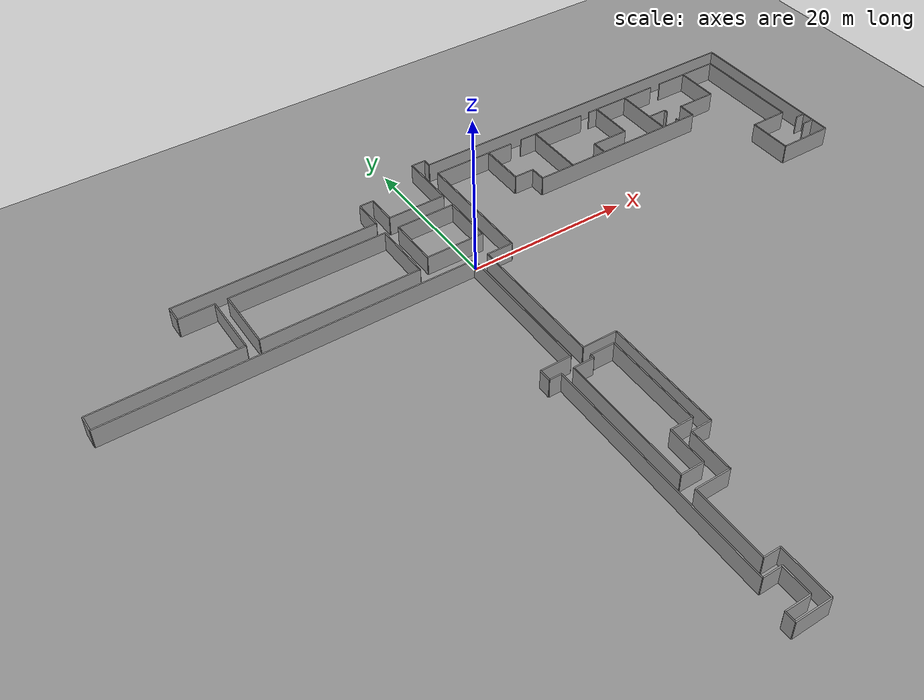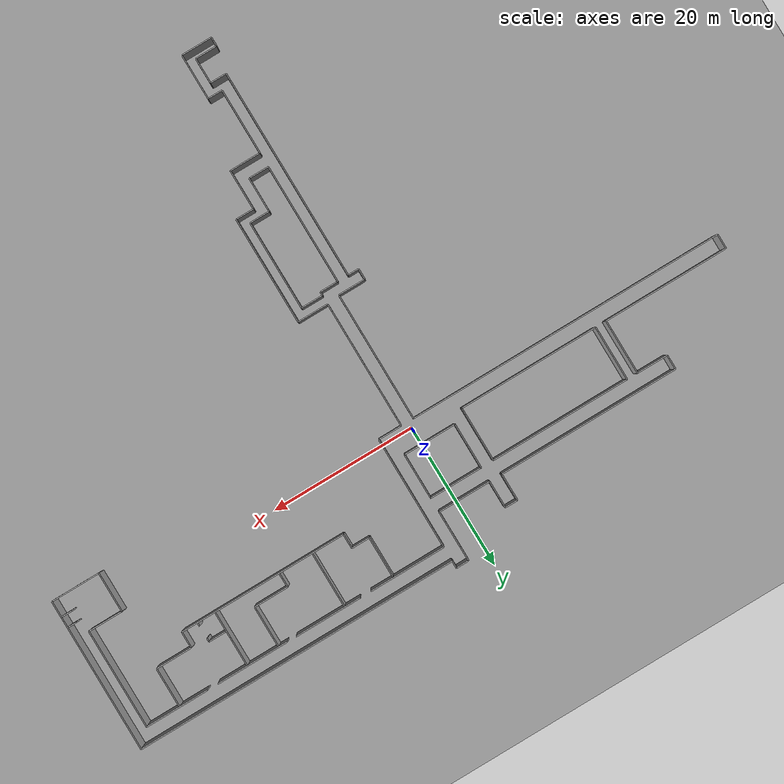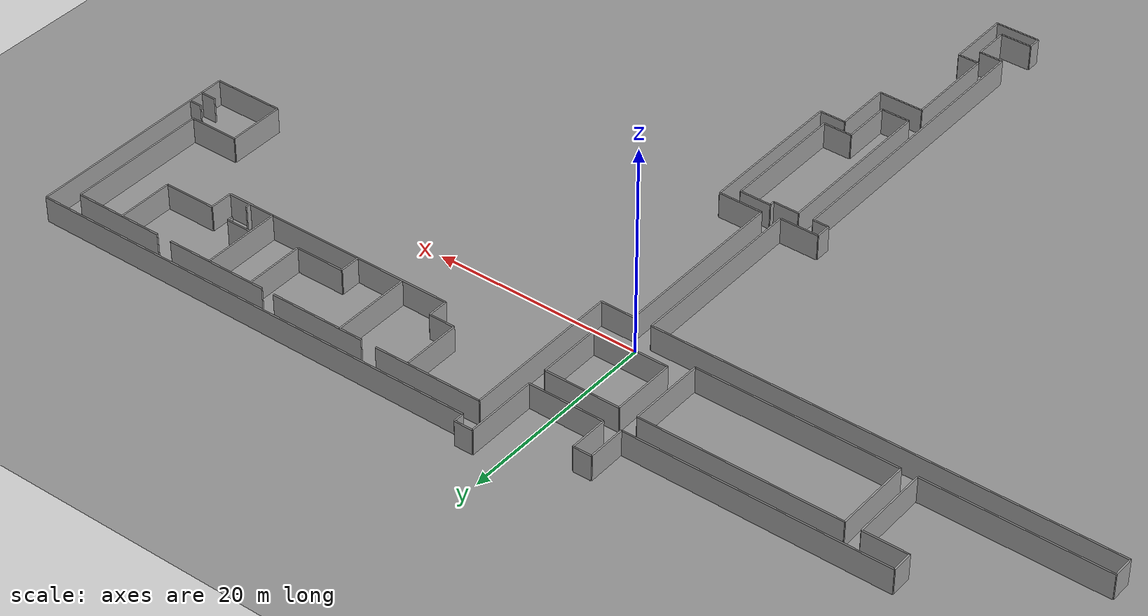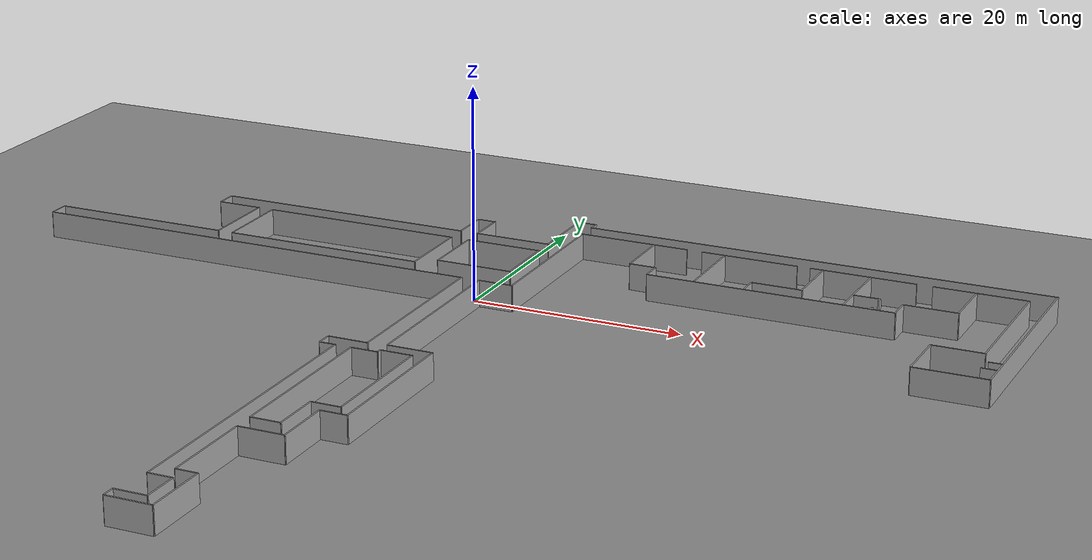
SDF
<sdf version="1.6">
 <world name="default">
  <model name="ground_plane_0">
   <static>1</static>
   <link name="link">
    <collision name="collision">
     <geometry><plane><normal>0 0 1</normal><size>100 100</size></plane></geometry>
     <surface><friction><ode><mu>100</mu><mu2>50</mu2></ode></friction></surface>
    </collision>
    <visual name="visual">
     <cast_shadows>0</cast_shadows>
     <geometry><plane><normal>0 0 1</normal><size>100 100</size></plane></geometry>
     <material>
      <script><uri>file://media/materials/scripts/gazebo.material</uri><name>Gazebo/Grey</name></script>
     </material>
    </visual>
    <velocity_decay><linear>0</linear><angular>0</angular></velocity_decay>
   </link>
   <pose>0.497681 0 0 0 -0 0</pose>
  </model>
  <model name="Wean4Complete">
   <pose>-5 0 0 0 -0 0</pose>
   <static>1</static>
   <link name="Wall_0">
    <collision name="Wall_0_Collision">
     <geometry><box><size>25.0 0.15 2.5</size></box></geometry>
     <pose>0 0 1.25 0 -0 0</pose>
    </collision>
    <visual name="Wall_0_Visual">
     <pose>0 0 1.25 0 -0 0</pose>
     <geometry><box><size>25.0 0.15 2.5</size></box></geometry>
     <material>
      <script><uri>file://media/materials/scripts/gazebo.material</uri><name>Gazebo/Grey</name></script>
      <ambient>1 1 1 1</ambient>
     </material>
    </visual>
    <pose>-14.05 10.5 0 0 0 0.0</pose>
   </link>
   <link name="Wall_1">
    <collision name="Wall_1_Collision">
     <geometry><box><size>3.75 0.15 2.5</size></box></geometry>
     <pose>0 0 1.25 0 -0 0</pose>
    </collision>
    <visual name="Wall_1_Visual">
     <pose>0 0 1.25 0 -0 0</pose>
     <geometry><box><size>3.75 0.15 2.5</size></box></geometry>
     <material>
      <script><uri>file://media/materials/scripts/gazebo.material</uri><name>Gazebo/Grey</name></script>
      <ambient>1 1 1 1</ambient>
     </material>
    </visual>
    <pose>-1.55 12.375 0 0 0 1.57079632679</pose>
   </link>
   <link name="Wall_2">
    <collision name="Wall_2_Collision">
     <geometry><box><size>1.75 0.15 2.5</size></box></geometry>
     <pose>0 0 1.25 0 -0 0</pose>
    </collision>
    <visual name="Wall_2_Visual">
     <pose>0 0 1.25 0 -0 0</pose>
     <geometry><box><size>1.75 0.15 2.5</size></box></geometry>
     <material>
      <script><uri>file://media/materials/scripts/gazebo.material</uri><name>Gazebo/Grey</name></script>
      <ambient>1 1 1 1</ambient>
     </material>
    </visual>
    <pose>-0.675 14.25 0 0 0 0.0</pose>
   </link>
   <link name="Wall_3">
    <collision name="Wall_3_Collision">
     <geometry><box><size>3.75 0.15 2.5</size></box></geometry>
     <pose>0 0 1.25 0 -0 0</pose>
    </collision>
    <visual name="Wall_3_Visual">
     <pose>0 0 1.25 0 -0 0</pose>
     <geometry><box><size>3.75 0.15 2.5</size></box></geometry>
     <material>
      <script><uri>file://media/materials/scripts/gazebo.material</uri><name>Gazebo/Grey</name></script>
      <ambient>1 1 1 1</ambient>
     </material>
    </visual>
    <pose>0.2 12.375 0 0 0 1.57079632679</pose>
   </link>
   <link name="Wall_4">
    <collision name="Wall_4_Collision">
     <geometry><box><size>7.25 0.15 2.5</size></box></geometry>
     <pose>0 0 1.25 0 -0 0</pose>
    </collision>
    <visual name="Wall_4_Visual">
     <pose>0 0 1.25 0 -0 0</pose>
     <geometry><box><size>7.25 0.15 2.5</size></box></geometry>
     <material>
      <script><uri>file://media/materials/scripts/gazebo.material</uri><name>Gazebo/Grey</name></script>
      <ambient>1 1 1 1</ambient>
     </material>
    </visual>
    <pose>3.825 10.5 0 0 0 0.0</pose>
   </link>
   <link name="Wall_5">
    <collision name="Wall_5_Collision">
     <geometry><box><size>7.0 0.15 2.5</size></box></geometry>
     <pose>0 0 1.25 0 -0 0</pose>
    </collision>
    <visual name="Wall_5_Visual">
     <pose>0 0 1.25 0 -0 0</pose>
     <geometry><box><size>7.0 0.15 2.5</size></box></geometry>
     <material>
      <script><uri>file://media/materials/scripts/gazebo.material</uri><name>Gazebo/Grey</name></script>
      <ambient>1 1 1 1</ambient>
     </material>
    </visual>
    <pose>7.45 14.0 0 0 0 1.57079632679</pose>
   </link>
   <link name="Wall_6">
    <collision name="Wall_6_Collision">
     <geometry><box><size>1.75 0.15 2.5</size></box></geometry>
     <pose>0 0 1.25 0 -0 0</pose>
    </collision>
    <visual name="Wall_6_Visual">
     <pose>0 0 1.25 0 -0 0</pose>
     <geometry><box><size>1.75 0.15 2.5</size></box></geometry>
     <material>
      <script><uri>file://media/materials/scripts/gazebo.material</uri><name>Gazebo/Grey</name></script>
      <ambient>1 1 1 1</ambient>
     </material>
    </visual>
    <pose>8.325 17.5 0 0 0 0.0</pose>
   </link>
   <link name="Wall_7">
    <collision name="Wall_7_Collision">
     <geometry><box><size>1.0 0.15 2.5</size></box></geometry>
     <pose>0 0 1.25 0 -0 0</pose>
    </collision>
    <visual name="Wall_7_Visual">
     <pose>0 0 1.25 0 -0 0</pose>
     <geometry><box><size>1.0 0.15 2.5</size></box></geometry>
     <material>
      <script><uri>file://media/materials/scripts/gazebo.material</uri><name>Gazebo/Grey</name></script>
      <ambient>1 1 1 1</ambient>
     </material>
    </visual>
    <pose>9.2 17.0 0 0 0 1.57079632679</pose>
   </link>
   <link name="Wall_8">
    <collision name="Wall_8_Collision">
     <geometry><box><size>44.75 0.15 2.5</size></box></geometry>
     <pose>0 0 1.25 0 -0 0</pose>
    </collision>
    <visual name="Wall_8_Visual">
     <pose>0 0 1.25 0 -0 0</pose>
     <geometry><box><size>44.75 0.15 2.5</size></box></geometry>
     <material>
      <script><uri>file://media/materials/scripts/gazebo.material</uri><name>Gazebo/Grey</name></script>
      <ambient>1 1 1 1</ambient>
     </material>
    </visual>
    <pose>31.575 16.5 0 0 0 0.0</pose>
   </link>
   <link name="Wall_9">
    <collision name="Wall_9_Collision">
     <geometry><box><size>21.25 0.15 2.5</size></box></geometry>
     <pose>0 0 1.25 0 -0 0</pose>
    </collision>
    <visual name="Wall_9_Visual">
     <pose>0 0 1.25 0 -0 0</pose>
     <geometry><box><size>21.25 0.15 2.5</size></box></geometry>
     <material>
      <script><uri>file://media/materials/scripts/gazebo.material</uri><name>Gazebo/Grey</name></script>
      <ambient>1 1 1 1</ambient>
     </material>
    </visual>
    <pose>53.95 5.875 0 0 0 1.57079632679</pose>
   </link>
   <link name="Wall_10">
    <collision name="Wall_10_Collision">
     <geometry><box><size>6.75 0.15 2.5</size></box></geometry>
     <pose>0 0 1.25 0 -0 0</pose>
    </collision>
    <visual name="Wall_10_Visual">
     <pose>0 0 1.25 0 -0 0</pose>
     <geometry><box><size>6.75 0.15 2.5</size></box></geometry>
     <material>
      <script><uri>file://media/materials/scripts/gazebo.material</uri><name>Gazebo/Grey</name></script>
      <ambient>1 1 1 1</ambient>
     </material>
    </visual>
    <pose>50.575 -4.75 0 0 0 0.0</pose>
   </link>
   <link name="Wall_11">
    <collision name="Wall_11_Collision">
     <geometry><box><size>5.5 0.15 2.5</size></box></geometry>
     <pose>0 0 1.25 0 -0 0</pose>
    </collision>
    <visual name="Wall_11_Visual">
     <pose>0 0 1.25 0 -0 0</pose>
     <geometry><box><size>5.5 0.15 2.5</size></box></geometry>
     <material>
      <script><uri>file://media/materials/scripts/gazebo.material</uri><name>Gazebo/Grey</name></script>
      <ambient>1 1 1 1</ambient>
     </material>
    </visual>
    <pose>47.2 -2.0 0 0 0 1.57079632679</pose>
   </link>
   <link name="Wall_13">
    <collision name="Wall_13_Collision">
     <geometry><box><size>4.75 0.15 2.5</size></box></geometry>
     <pose>0 0 1.25 0 -0 0</pose>
    </collision>
    <visual name="Wall_13_Visual">
     <pose>0 0 1.25 0 -0 0</pose>
     <geometry><box><size>4.75 0.15 2.5</size></box></geometry>
     <material>
      <script><uri>file://media/materials/scripts/gazebo.material</uri><name>Gazebo/Grey</name></script>
      <ambient>1 1 1 1</ambient>
     </material>
    </visual>
    <pose>49.575 0.75 0 0 0 0.0</pose>
   </link>
   <link name="Wall_14">
    <collision name="Wall_14_Collision">
     <geometry><box><size>13.75 0.15 2.5</size></box></geometry>
     <pose>0 0 1.25 0 -0 0</pose>
    </collision>
    <visual name="Wall_14_Visual">
     <pose>0 0 1.25 0 -0 0</pose>
     <geometry><box><size>13.75 0.15 2.5</size></box></geometry>
     <material>
      <script><uri>file://media/materials/scripts/gazebo.material</uri><name>Gazebo/Grey</name></script>
      <ambient>1 1 1 1</ambient>
     </material>
    </visual>
    <pose>51.95 7.625 0 0 0 1.57079632679</pose>
   </link>
   <link name="Wall_15">
    <collision name="Wall_15_Collision">
     <geometry><box><size>8.75 0.15 2.5</size></box></geometry>
     <pose>0 0 1.25 0 -0 0</pose>
    </collision>
    <visual name="Wall_15_Visual">
     <pose>0 0 1.25 0 -0 0</pose>
     <geometry><box><size>8.75 0.15 2.5</size></box></geometry>
     <material>
      <script><uri>file://media/materials/scripts/gazebo.material</uri><name>Gazebo/Grey</name></script>
      <ambient>1 1 1 1</ambient>
     </material>
    </visual>
    <pose>47.575 14.5 0 0 0 0.0</pose>
   </link>
   <link name="Wall_16">
    <collision name="Wall_16_Collision">
     <geometry><box><size>1.25 0.15 2.5</size></box></geometry>
     <pose>0 0 1.25 0 -0 0</pose>
    </collision>
    <visual name="Wall_16_Visual">
     <pose>0 0 1.25 0 -0 0</pose>
     <geometry><box><size>1.25 0.15 2.5</size></box></geometry>
     <material>
      <script><uri>file://media/materials/scripts/gazebo.material</uri><name>Gazebo/Grey</name></script>
      <ambient>1 1 1 1</ambient>
     </material>
    </visual>
    <pose>53.325 -1.0 0 0 0 0.0</pose>
   </link>
   <link name="Wall_17">
    <collision name="Wall_17_Collision">
     <geometry><box><size>1.5 0.15 2.5</size></box></geometry>
     <pose>0 0 1.25 0 -0 0</pose>
    </collision>
    <visual name="Wall_17_Visual">
     <pose>0 0 1.25 0 -0 0</pose>
     <geometry><box><size>1.5 0.15 2.5</size></box></geometry>
     <material>
      <script><uri>file://media/materials/scripts/gazebo.material</uri><name>Gazebo/Grey</name></script>
      <ambient>1 1 1 1</ambient>
     </material>
    </visual>
    <pose>53.2 -2.5 0 0 0 0.0</pose>
   </link>
   <link name="Wall_18">
    <collision name="Wall_18_Collision">
     <geometry><box><size>10.0 0.15 2.5</size></box></geometry>
     <pose>0 0 1.25 0 -0 0</pose>
    </collision>
    <visual name="Wall_18_Visual">
     <pose>0 0 1.25 0 -0 0</pose>
     <geometry><box><size>10.0 0.15 2.5</size></box></geometry>
     <material>
      <script><uri>file://media/materials/scripts/gazebo.material</uri><name>Gazebo/Grey</name></script>
      <ambient>1 1 1 1</ambient>
     </material>
    </visual>
    <pose>36.7 14.5 0 0 0 0.0</pose>
   </link>
   <link name="Wall_19">
    <collision name="Wall_19_Collision">
     <geometry><box><size>9.25 0.15 2.5</size></box></geometry>
     <pose>0 0 1.25 0 -0 0</pose>
    </collision>
    <visual name="Wall_19_Visual">
     <pose>0 0 1.25 0 -0 0</pose>
     <geometry><box><size>9.25 0.15 2.5</size></box></geometry>
     <material>
      <script><uri>file://media/materials/scripts/gazebo.material</uri><name>Gazebo/Grey</name></script>
      <ambient>1 1 1 1</ambient>
     </material>
    </visual>
    <pose>25.825 14.5 0 0 0 0.0</pose>
   </link>
   <link name="Wall_20">
    <collision name="Wall_20_Collision">
     <geometry><box><size>10.5 0.15 2.5</size></box></geometry>
     <pose>0 0 1.25 0 -0 0</pose>
    </collision>
    <visual name="Wall_20_Visual">
     <pose>0 0 1.25 0 -0 0</pose>
     <geometry><box><size>10.5 0.15 2.5</size></box></geometry>
     <material>
      <script><uri>file://media/materials/scripts/gazebo.material</uri><name>Gazebo/Grey</name></script>
      <ambient>1 1 1 1</ambient>
     </material>
    </visual>
    <pose>14.45 14.5 0 0 0 0.0</pose>
   </link>
   <link name="Wall_21">
    <collision name="Wall_21_Collision">
     <geometry><box><size>5.75 0.15 2.5</size></box></geometry>
     <pose>0 0 1.25 0 -0 0</pose>
    </collision>
    <visual name="Wall_21_Visual">
     <pose>0 0 1.25 0 -0 0</pose>
     <geometry><box><size>5.75 0.15 2.5</size></box></geometry>
     <material>
      <script><uri>file://media/materials/scripts/gazebo.material</uri><name>Gazebo/Grey</name></script>
      <ambient>1 1 1 1</ambient>
     </material>
    </visual>
    <pose>16.45 11.625 0 0 0 1.57079632679</pose>
   </link>
   <link name="Wall_22">
    <collision name="Wall_22_Collision">
     <geometry><box><size>2.5 0.15 2.5</size></box></geometry>
     <pose>0 0 1.25 0 -0 0</pose>
    </collision>
    <visual name="Wall_22_Visual">
     <pose>0 0 1.25 0 -0 0</pose>
     <geometry><box><size>2.5 0.15 2.5</size></box></geometry>
     <material>
      <script><uri>file://media/materials/scripts/gazebo.material</uri><name>Gazebo/Grey</name></script>
      <ambient>1 1 1 1</ambient>
     </material>
    </visual>
    <pose>17.7 8.75 0 0 0 0.0</pose>
   </link>
   <link name="Wall_23">
    <collision name="Wall_23_Collision">
     <geometry><box><size>2.0 0.15 2.5</size></box></geometry>
     <pose>0 0 1.25 0 -0 0</pose>
    </collision>
    <visual name="Wall_23_Visual">
     <pose>0 0 1.25 0 -0 0</pose>
     <geometry><box><size>2.0 0.15 2.5</size></box></geometry>
     <material>
      <script><uri>file://media/materials/scripts/gazebo.material</uri><name>Gazebo/Grey</name></script>
      <ambient>1 1 1 1</ambient>
     </material>
    </visual>
    <pose>18.95 7.75 0 0 0 1.57079632679</pose>
   </link>
   <link name="Wall_24">
    <collision name="Wall_24_Collision">
     <geometry><box><size>23.25 0.15 2.5</size></box></geometry>
     <pose>0 0 1.25 0 -0 0</pose>
    </collision>
    <visual name="Wall_24_Visual">
     <pose>0 0 1.25 0 -0 0</pose>
     <geometry><box><size>23.25 0.15 2.5</size></box></geometry>
     <material>
      <script><uri>file://media/materials/scripts/gazebo.material</uri><name>Gazebo/Grey</name></script>
      <ambient>1 1 1 1</ambient>
     </material>
    </visual>
    <pose>30.575 6.75 0 0 0 0.0</pose>
   </link>
   <link name="Wall_25">
    <collision name="Wall_25_Collision">
     <geometry><box><size>2.25 0.15 2.5</size></box></geometry>
     <pose>0 0 1.25 0 -0 0</pose>
    </collision>
    <visual name="Wall_25_Visual">
     <pose>0 0 1.25 0 -0 0</pose>
     <geometry><box><size>2.25 0.15 2.5</size></box></geometry>
     <material>
      <script><uri>file://media/materials/scripts/gazebo.material</uri><name>Gazebo/Grey</name></script>
      <ambient>1 1 1 1</ambient>
     </material>
    </visual>
    <pose>42.2 7.875 0 0 0 1.57079632679</pose>
   </link>
   <link name="Wall_26">
    <collision name="Wall_26_Collision">
     <geometry><box><size>5.0 0.15 2.5</size></box></geometry>
     <pose>0 0 1.25 0 -0 0</pose>
    </collision>
    <visual name="Wall_26_Visual">
     <pose>0 0 1.25 0 -0 0</pose>
     <geometry><box><size>5.0 0.15 2.5</size></box></geometry>
     <material>
      <script><uri>file://media/materials/scripts/gazebo.material</uri><name>Gazebo/Grey</name></script>
      <ambient>1 1 1 1</ambient>
     </material>
    </visual>
    <pose>44.7 9.0 0 0 0 0.0</pose>
   </link>
   <link name="Wall_27">
    <collision name="Wall_27_Collision">
     <geometry><box><size>5.5 0.15 2.5</size></box></geometry>
     <pose>0 0 1.25 0 -0 0</pose>
    </collision>
    <visual name="Wall_27_Visual">
     <pose>0 0 1.25 0 -0 0</pose>
     <geometry><box><size>5.5 0.15 2.5</size></box></geometry>
     <material>
      <script><uri>file://media/materials/scripts/gazebo.material</uri><name>Gazebo/Grey</name></script>
      <ambient>1 1 1 1</ambient>
     </material>
    </visual>
    <pose>47.2 11.75 0 0 0 1.57079632679</pose>
   </link>
   <link name="Wall_28">
    <collision name="Wall_28_Collision">
     <geometry><box><size>7.75 0.15 2.5</size></box></geometry>
     <pose>0 0 1.25 0 -0 0</pose>
    </collision>
    <visual name="Wall_28_Visual">
     <pose>0 0 1.25 0 -0 0</pose>
     <geometry><box><size>7.75 0.15 2.5</size></box></geometry>
     <material>
      <script><uri>file://media/materials/scripts/gazebo.material</uri><name>Gazebo/Grey</name></script>
      <ambient>1 1 1 1</ambient>
     </material>
    </visual>
    <pose>37.45 10.625 0 0 0 1.57079632679</pose>
   </link>
   <link name="Wall_29">
    <collision name="Wall_29_Collision">
     <geometry><box><size>2.5 0.15 2.5</size></box></geometry>
     <pose>0 0 1.25 0 -0 0</pose>
    </collision>
    <visual name="Wall_29_Visual">
     <pose>0 0 1.25 0 -0 0</pose>
     <geometry><box><size>2.5 0.15 2.5</size></box></geometry>
     <material>
      <script><uri>file://media/materials/scripts/gazebo.material</uri><name>Gazebo/Grey</name></script>
      <ambient>1 1 1 1</ambient>
     </material>
    </visual>
    <pose>38.7 9.5 0 0 0 0.0</pose>
   </link>
   <link name="Wall_30">
    <collision name="Wall_30_Collision">
     <geometry><box><size>0.5 0.15 2.5</size></box></geometry>
     <pose>0 0 1.25 0 -0 0</pose>
    </collision>
    <visual name="Wall_30_Visual">
     <pose>0 0 1.25 0 -0 0</pose>
     <geometry><box><size>0.5 0.15 2.5</size></box></geometry>
     <material>
      <script><uri>file://media/materials/scripts/gazebo.material</uri><name>Gazebo/Grey</name></script>
      <ambient>1 1 1 1</ambient>
     </material>
    </visual>
    <pose>39.95 9.25 0 0 0 1.57079632679</pose>
   </link>
   <link name="Wall_31">
    <collision name="Wall_31_Collision">
     <geometry><box><size>0.5 0.15 2.5</size></box></geometry>
     <pose>0 0 1.25 0 -0 0</pose>
    </collision>
    <visual name="Wall_31_Visual">
     <pose>0 0 1.25 0 -0 0</pose>
     <geometry><box><size>0.5 0.15 2.5</size></box></geometry>
     <material>
      <script><uri>file://media/materials/scripts/gazebo.material</uri><name>Gazebo/Grey</name></script>
      <ambient>1 1 1 1</ambient>
     </material>
    </visual>
    <pose>39.95 7.0 0 0 0 1.57079632679</pose>
   </link>
   <link name="Wall_32">
    <collision name="Wall_32_Collision">
     <geometry><box><size>5.75 0.15 2.5</size></box></geometry>
     <pose>0 0 1.25 0 -0 0</pose>
    </collision>
    <visual name="Wall_32_Visual">
     <pose>0 0 1.25 0 -0 0</pose>
     <geometry><box><size>5.75 0.15 2.5</size></box></geometry>
     <material>
      <script><uri>file://media/materials/scripts/gazebo.material</uri><name>Gazebo/Grey</name></script>
      <ambient>1 1 1 1</ambient>
     </material>
    </visual>
    <pose>32.95 11.625 0 0 0 1.57079632679</pose>
   </link>
   <link name="Wall_33">
    <collision name="Wall_33_Collision">
     <geometry><box><size>4.75 0.15 2.5</size></box></geometry>
     <pose>0 0 1.25 0 -0 0</pose>
    </collision>
    <visual name="Wall_33_Visual">
     <pose>0 0 1.25 0 -0 0</pose>
     <geometry><box><size>4.75 0.15 2.5</size></box></geometry>
     <material>
      <script><uri>file://media/materials/scripts/gazebo.material</uri><name>Gazebo/Grey</name></script>
      <ambient>1 1 1 1</ambient>
     </material>
    </visual>
    <pose>30.575 8.75 0 0 0 0.0</pose>
   </link>
   <link name="Wall_34">
    <collision name="Wall_34_Collision">
     <geometry><box><size>2.0 0.15 2.5</size></box></geometry>
     <pose>0 0 1.25 0 -0 0</pose>
    </collision>
    <visual name="Wall_34_Visual">
     <pose>0 0 1.25 0 -0 0</pose>
     <geometry><box><size>2.0 0.15 2.5</size></box></geometry>
     <material>
      <script><uri>file://media/materials/scripts/gazebo.material</uri><name>Gazebo/Grey</name></script>
      <ambient>1 1 1 1</ambient>
     </material>
    </visual>
    <pose>28.2 7.75 0 0 0 1.57079632679</pose>
   </link>
   <link name="Wall_35">
    <collision name="Wall_35_Collision">
     <geometry><box><size>7.75 0.15 2.5</size></box></geometry>
     <pose>0 0 1.25 0 -0 0</pose>
    </collision>
    <visual name="Wall_35_Visual">
     <pose>0 0 1.25 0 -0 0</pose>
     <geometry><box><size>7.75 0.15 2.5</size></box></geometry>
     <material>
      <script><uri>file://media/materials/scripts/gazebo.material</uri><name>Gazebo/Grey</name></script>
      <ambient>1 1 1 1</ambient>
     </material>
    </visual>
    <pose>23.45 10.625 0 0 0 1.57079632679</pose>
   </link>
   <link name="Wall_36">
    <collision name="Wall_36_Collision">
     <geometry><box><size>15.5 0.15 2.5</size></box></geometry>
     <pose>0 0 1.25 0 -0 0</pose>
    </collision>
    <visual name="Wall_36_Visual">
     <pose>0 0 1.25 0 -0 0</pose>
     <geometry><box><size>15.5 0.15 2.5</size></box></geometry>
     <material>
      <script><uri>file://media/materials/scripts/gazebo.material</uri><name>Gazebo/Grey</name></script>
      <ambient>1 1 1 1</ambient>
     </material>
    </visual>
    <pose>9.2 6.75 0 0 0 1.57079632679</pose>
   </link>
   <link name="Wall_37">
    <collision name="Wall_37_Collision">
     <geometry><box><size>3.25 0.15 2.5</size></box></geometry>
     <pose>0 0 1.25 0 -0 0</pose>
    </collision>
    <visual name="Wall_37_Visual">
     <pose>0 0 1.25 0 -0 0</pose>
     <geometry><box><size>3.25 0.15 2.5</size></box></geometry>
     <material>
      <script><uri>file://media/materials/scripts/gazebo.material</uri><name>Gazebo/Grey</name></script>
      <ambient>1 1 1 1</ambient>
     </material>
    </visual>
    <pose>7.575 -1.0 0 0 0 0.0</pose>
   </link>
   <link name="Wall_38">
    <collision name="Wall_38_Collision">
     <geometry><box><size>17.5 0.15 2.5</size></box></geometry>
     <pose>0 0 1.25 0 -0 0</pose>
    </collision>
    <visual name="Wall_38_Visual">
     <pose>0 0 1.25 0 -0 0</pose>
     <geometry><box><size>17.5 0.15 2.5</size></box></geometry>
     <material>
      <script><uri>file://media/materials/scripts/gazebo.material</uri><name>Gazebo/Grey</name></script>
      <ambient>1 1 1 1</ambient>
     </material>
    </visual>
    <pose>5.95 -9.75 0 0 0 1.57079632679</pose>
   </link>
   <link name="Wall_39">
    <collision name="Wall_39_Collision">
     <geometry><box><size>4.25 0.15 2.5</size></box></geometry>
     <pose>0 0 1.25 0 -0 0</pose>
    </collision>
    <visual name="Wall_39_Visual">
     <pose>0 0 1.25 0 -0 0</pose>
     <geometry><box><size>4.25 0.15 2.5</size></box></geometry>
     <material>
      <script><uri>file://media/materials/scripts/gazebo.material</uri><name>Gazebo/Grey</name></script>
      <ambient>1 1 1 1</ambient>
     </material>
    </visual>
    <pose>8.075 -18.5 0 0 0 0.0</pose>
   </link>
   <link name="Wall_40">
    <collision name="Wall_40_Collision">
     <geometry><box><size>14.75 0.15 2.5</size></box></geometry>
     <pose>0 0 1.25 0 -0 0</pose>
    </collision>
    <visual name="Wall_40_Visual">
     <pose>0 0 1.25 0 -0 0</pose>
     <geometry><box><size>14.75 0.15 2.5</size></box></geometry>
     <material>
      <script><uri>file://media/materials/scripts/gazebo.material</uri><name>Gazebo/Grey</name></script>
      <ambient>1 1 1 1</ambient>
     </material>
    </visual>
    <pose>10.2 -25.875 0 0 0 1.57079632679</pose>
   </link>
   <link name="Wall_41">
    <collision name="Wall_41_Collision">
     <geometry><box><size>2.5 0.15 2.5</size></box></geometry>
     <pose>0 0 1.25 0 -0 0</pose>
    </collision>
    <visual name="Wall_41_Visual">
     <pose>0 0 1.25 0 -0 0</pose>
     <geometry><box><size>2.5 0.15 2.5</size></box></geometry>
     <material>
      <script><uri>file://media/materials/scripts/gazebo.material</uri><name>Gazebo/Grey</name></script>
      <ambient>1 1 1 1</ambient>
     </material>
    </visual>
    <pose>8.95 -33.25 0 0 0 0.0</pose>
   </link>
   <link name="Wall_42">
    <collision name="Wall_42_Collision">
     <geometry><box><size>5.5 0.15 2.5</size></box></geometry>
     <pose>0 0 1.25 0 -0 0</pose>
    </collision>
    <visual name="Wall_42_Visual">
     <pose>0 0 1.25 0 -0 0</pose>
     <geometry><box><size>5.5 0.15 2.5</size></box></geometry>
     <material>
      <script><uri>file://media/materials/scripts/gazebo.material</uri><name>Gazebo/Grey</name></script>
      <ambient>1 1 1 1</ambient>
     </material>
    </visual>
    <pose>7.7 -36.0 0 0 0 1.57079632679</pose>
   </link>
   <link name="Wall_43">
    <collision name="Wall_43_Collision">
     <geometry><box><size>4.25 0.15 2.5</size></box></geometry>
     <pose>0 0 1.25 0 -0 0</pose>
    </collision>
    <visual name="Wall_43_Visual">
     <pose>0 0 1.25 0 -0 0</pose>
     <geometry><box><size>4.25 0.15 2.5</size></box></geometry>
     <material>
      <script><uri>file://media/materials/scripts/gazebo.material</uri><name>Gazebo/Grey</name></script>
      <ambient>1 1 1 1</ambient>
     </material>
    </visual>
    <pose>5.575 -38.75 0 0 0 0.0</pose>
   </link>
   <link name="Wall_44">
    <collision name="Wall_44_Collision">
     <geometry><box><size>9.0 0.15 2.5</size></box></geometry>
     <pose>0 0 1.25 0 -0 0</pose>
    </collision>
    <visual name="Wall_44_Visual">
     <pose>0 0 1.25 0 -0 0</pose>
     <geometry><box><size>9.0 0.15 2.5</size></box></geometry>
     <material>
      <script><uri>file://media/materials/scripts/gazebo.material</uri><name>Gazebo/Grey</name></script>
      <ambient>1 1 1 1</ambient>
     </material>
    </visual>
    <pose>3.45 -43.25 0 0 0 1.57079632679</pose>
   </link>
   <link name="Wall_45">
    <collision name="Wall_45_Collision">
     <geometry><box><size>2.0 0.15 2.5</size></box></geometry>
     <pose>0 0 1.25 0 -0 0</pose>
    </collision>
    <visual name="Wall_45_Visual">
     <pose>0 0 1.25 0 -0 0</pose>
     <geometry><box><size>2.0 0.15 2.5</size></box></geometry>
     <material>
      <script><uri>file://media/materials/scripts/gazebo.material</uri><name>Gazebo/Grey</name></script>
      <ambient>1 1 1 1</ambient>
     </material>
    </visual>
    <pose>4.45 -47.75 0 0 0 0.0</pose>
   </link>
   <link name="Wall_46">
    <collision name="Wall_46_Collision">
     <geometry><box><size>6.25 0.15 2.5</size></box></geometry>
     <pose>0 0 1.25 0 -0 0</pose>
    </collision>
    <visual name="Wall_46_Visual">
     <pose>0 0 1.25 0 -0 0</pose>
     <geometry><box><size>6.25 0.15 2.5</size></box></geometry>
     <material>
      <script><uri>file://media/materials/scripts/gazebo.material</uri><name>Gazebo/Grey</name></script>
      <ambient>1 1 1 1</ambient>
     </material>
    </visual>
    <pose>5.45 -50.875 0 0 0 1.57079632679</pose>
   </link>
   <link name="Wall_47">
    <collision name="Wall_47_Collision">
     <geometry><box><size>4.25 0.15 2.5</size></box></geometry>
     <pose>0 0 1.25 0 -0 0</pose>
    </collision>
    <visual name="Wall_47_Visual">
     <pose>0 0 1.25 0 -0 0</pose>
     <geometry><box><size>4.25 0.15 2.5</size></box></geometry>
     <material>
      <script><uri>file://media/materials/scripts/gazebo.material</uri><name>Gazebo/Grey</name></script>
      <ambient>1 1 1 1</ambient>
     </material>
    </visual>
    <pose>3.325 -54.0 0 0 0 0.0</pose>
   </link>
   <link name="Wall_48">
    <collision name="Wall_48_Collision">
     <geometry><box><size>1.25 0.15 2.5</size></box></geometry>
     <pose>0 0 1.25 0 -0 0</pose>
    </collision>
    <visual name="Wall_48_Visual">
     <pose>0 0 1.25 0 -0 0</pose>
     <geometry><box><size>1.25 0.15 2.5</size></box></geometry>
     <material>
      <script><uri>file://media/materials/scripts/gazebo.material</uri><name>Gazebo/Grey</name></script>
      <ambient>1 1 1 1</ambient>
     </material>
    </visual>
    <pose>1.2 -53.375 0 0 0 1.57079632679</pose>
   </link>
   <link name="Wall_49">
    <collision name="Wall_49_Collision">
     <geometry><box><size>3.0 0.15 2.5</size></box></geometry>
     <pose>0 0 1.25 0 -0 0</pose>
    </collision>
    <visual name="Wall_49_Visual">
     <pose>0 0 1.25 0 -0 0</pose>
     <geometry><box><size>3.0 0.15 2.5</size></box></geometry>
     <material>
      <script><uri>file://media/materials/scripts/gazebo.material</uri><name>Gazebo/Grey</name></script>
      <ambient>1 1 1 1</ambient>
     </material>
    </visual>
    <pose>2.7 -52.75 0 0 0 0.0</pose>
   </link>
   <link name="Wall_50">
    <collision name="Wall_50_Collision">
     <geometry><box><size>3.5 0.15 2.5</size></box></geometry>
     <pose>0 0 1.25 0 -0 0</pose>
    </collision>
    <visual name="Wall_50_Visual">
     <pose>0 0 1.25 0 -0 0</pose>
     <geometry><box><size>3.5 0.15 2.5</size></box></geometry>
     <material>
      <script><uri>file://media/materials/scripts/gazebo.material</uri><name>Gazebo/Grey</name></script>
      <ambient>1 1 1 1</ambient>
     </material>
    </visual>
    <pose>4.2 -51.0 0 0 0 1.57079632679</pose>
   </link>
   <link name="Wall_51">
    <collision name="Wall_51_Collision">
     <geometry><box><size>2.25 0.15 2.5</size></box></geometry>
     <pose>0 0 1.25 0 -0 0</pose>
    </collision>
    <visual name="Wall_51_Visual">
     <pose>0 0 1.25 0 -0 0</pose>
     <geometry><box><size>2.25 0.15 2.5</size></box></geometry>
     <material>
      <script><uri>file://media/materials/scripts/gazebo.material</uri><name>Gazebo/Grey</name></script>
      <ambient>1 1 1 1</ambient>
     </material>
    </visual>
    <pose>3.075 -49.25 0 0 0 0.0</pose>
   </link>
   <link name="Wall_52">
    <collision name="Wall_52_Collision">
     <geometry><box><size>29.0 0.15 2.5</size></box></geometry>
     <pose>0 0 1.25 0 -0 0</pose>
    </collision>
    <visual name="Wall_52_Visual">
     <pose>0 0 1.25 0 -0 0</pose>
     <geometry><box><size>29.0 0.15 2.5</size></box></geometry>
     <material>
      <script><uri>file://media/materials/scripts/gazebo.material</uri><name>Gazebo/Grey</name></script>
      <ambient>1 1 1 1</ambient>
     </material>
    </visual>
    <pose>1.95 -34.75 0 0 0 1.57079632679</pose>
   </link>
   <link name="Wall_53">
    <collision name="Wall_53_Collision">
     <geometry><box><size>1.5 0.15 2.5</size></box></geometry>
     <pose>0 0 1.25 0 -0 0</pose>
    </collision>
    <visual name="Wall_53_Visual">
     <pose>0 0 1.25 0 -0 0</pose>
     <geometry><box><size>1.5 0.15 2.5</size></box></geometry>
     <material>
      <script><uri>file://media/materials/scripts/gazebo.material</uri><name>Gazebo/Grey</name></script>
      <ambient>1 1 1 1</ambient>
     </material>
    </visual>
    <pose>1.2 -20.25 0 0 0 0.0</pose>
   </link>
   <link name="Wall_54">
    <collision name="Wall_54_Collision">
     <geometry><box><size>1.5 0.15 2.5</size></box></geometry>
     <pose>0 0 1.25 0 -0 0</pose>
    </collision>
    <visual name="Wall_54_Visual">
     <pose>0 0 1.25 0 -0 0</pose>
     <geometry><box><size>1.5 0.15 2.5</size></box></geometry>
     <material>
      <script><uri>file://media/materials/scripts/gazebo.material</uri><name>Gazebo/Grey</name></script>
      <ambient>1 1 1 1</ambient>
     </material>
    </visual>
    <pose>0.45 -19.5 0 0 0 1.57079632679</pose>
   </link>
   <link name="Wall_55">
    <collision name="Wall_55_Collision">
     <geometry><box><size>3.75 0.15 2.5</size></box></geometry>
     <pose>0 0 1.25 0 -0 0</pose>
    </collision>
    <visual name="Wall_55_Visual">
     <pose>0 0 1.25 0 -0 0</pose>
     <geometry><box><size>3.75 0.15 2.5</size></box></geometry>
     <material>
      <script><uri>file://media/materials/scripts/gazebo.material</uri><name>Gazebo/Grey</name></script>
      <ambient>1 1 1 1</ambient>
     </material>
    </visual>
    <pose>2.325 -18.75 0 0 0 0.0</pose>
   </link>
   <link name="Wall_56">
    <collision name="Wall_56_Collision">
     <geometry><box><size>17.75 0.15 2.5</size></box></geometry>
     <pose>0 0 1.25 0 -0 0</pose>
    </collision>
    <visual name="Wall_56_Visual">
     <pose>0 0 1.25 0 -0 0</pose>
     <geometry><box><size>17.75 0.15 2.5</size></box></geometry>
     <material>
      <script><uri>file://media/materials/scripts/gazebo.material</uri><name>Gazebo/Grey</name></script>
      <ambient>1 1 1 1</ambient>
     </material>
    </visual>
    <pose>4.2 -9.875 0 0 0 1.57079632679</pose>
   </link>
   <link name="Wall_57">
    <collision name="Wall_57_Collision">
     <geometry><box><size>43.75 0.15 2.5</size></box></geometry>
     <pose>0 0 1.25 0 -0 0</pose>
    </collision>
    <visual name="Wall_57_Visual">
     <pose>0 0 1.25 0 -0 0</pose>
     <geometry><box><size>43.75 0.15 2.5</size></box></geometry>
     <material>
      <script><uri>file://media/materials/scripts/gazebo.material</uri><name>Gazebo/Grey</name></script>
      <ambient>1 1 1 1</ambient>
     </material>
    </visual>
    <pose>-17.675 -1.0 0 0 0 0.0</pose>
   </link>
   <link name="Wall_58">
    <collision name="Wall_58_Collision">
     <geometry><box><size>2.0 0.15 2.5</size></box></geometry>
     <pose>0 0 1.25 0 -0 0</pose>
    </collision>
    <visual name="Wall_58_Visual">
     <pose>0 0 1.25 0 -0 0</pose>
     <geometry><box><size>2.0 0.15 2.5</size></box></geometry>
     <material>
      <script><uri>file://media/materials/scripts/gazebo.material</uri><name>Gazebo/Grey</name></script>
      <ambient>1 1 1 1</ambient>
     </material>
    </visual>
    <pose>-39.55 0.0 0 0 0 1.57079632679</pose>
   </link>
   <link name="Wall_59">
    <collision name="Wall_59_Collision">
     <geometry><box><size>17.25 0.15 2.5</size></box></geometry>
     <pose>0 0 1.25 0 -0 0</pose>
    </collision>
    <visual name="Wall_59_Visual">
     <pose>0 0 1.25 0 -0 0</pose>
     <geometry><box><size>17.25 0.15 2.5</size></box></geometry>
     <material>
      <script><uri>file://media/materials/scripts/gazebo.material</uri><name>Gazebo/Grey</name></script>
      <ambient>1 1 1 1</ambient>
     </material>
    </visual>
    <pose>-30.925 1.0 0 0 0 0.0</pose>
   </link>
   <link name="Wall_60">
    <collision name="Wall_60_Collision">
     <geometry><box><size>7.5 0.15 2.5</size></box></geometry>
     <pose>0 0 1.25 0 -0 0</pose>
    </collision>
    <visual name="Wall_60_Visual">
     <pose>0 0 1.25 0 -0 0</pose>
     <geometry><box><size>7.5 0.15 2.5</size></box></geometry>
     <material>
      <script><uri>file://media/materials/scripts/gazebo.material</uri><name>Gazebo/Grey</name></script>
      <ambient>1 1 1 1</ambient>
     </material>
    </visual>
    <pose>-22.3 4.75 0 0 0 1.57079632679</pose>
   </link>
   <link name="Wall_61">
    <collision name="Wall_61_Collision">
     <geometry><box><size>4.25 0.15 2.5</size></box></geometry>
     <pose>0 0 1.25 0 -0 0</pose>
    </collision>
    <visual name="Wall_61_Visual">
     <pose>0 0 1.25 0 -0 0</pose>
     <geometry><box><size>4.25 0.15 2.5</size></box></geometry>
     <material>
      <script><uri>file://media/materials/scripts/gazebo.material</uri><name>Gazebo/Grey</name></script>
      <ambient>1 1 1 1</ambient>
     </material>
    </visual>
    <pose>-24.425 8.5 0 0 0 0.0</pose>
   </link>
   <link name="Wall_62">
    <collision name="Wall_62_Collision">
     <geometry><box><size>2.0 0.15 2.5</size></box></geometry>
     <pose>0 0 1.25 0 -0 0</pose>
    </collision>
    <visual name="Wall_62_Visual">
     <pose>0 0 1.25 0 -0 0</pose>
     <geometry><box><size>2.0 0.15 2.5</size></box></geometry>
     <material>
      <script><uri>file://media/materials/scripts/gazebo.material</uri><name>Gazebo/Grey</name></script>
      <ambient>1 1 1 1</ambient>
     </material>
    </visual>
    <pose>-26.55 9.5 0 0 0 1.57079632679</pose>
   </link>
   <link name="Wall_63">
    <collision name="Wall_63_Collision">
     <geometry><box><size>7.5 0.15 2.5</size></box></geometry>
     <pose>0 0 1.25 0 -0 0</pose>
    </collision>
    <visual name="Wall_63_Visual">
     <pose>0 0 1.25 0 -0 0</pose>
     <geometry><box><size>7.5 0.15 2.5</size></box></geometry>
     <material>
      <script><uri>file://media/materials/scripts/gazebo.material</uri><name>Gazebo/Grey</name></script>
      <ambient>1 1 1 1</ambient>
     </material>
    </visual>
    <pose>-20.8 4.75 0 0 0 1.57079632679</pose>
   </link>
   <link name="Wall_64">
    <collision name="Wall_64_Collision">
     <geometry><box><size>19.25 0.15 2.5</size></box></geometry>
     <pose>0 0 1.25 0 -0 0</pose>
    </collision>
    <visual name="Wall_64_Visual">
     <pose>0 0 1.25 0 -0 0</pose>
     <geometry><box><size>19.25 0.15 2.5</size></box></geometry>
     <material>
      <script><uri>file://media/materials/scripts/gazebo.material</uri><name>Gazebo/Grey</name></script>
      <ambient>1 1 1 1</ambient>
     </material>
    </visual>
    <pose>-11.175 1.0 0 0 0 0.0</pose>
   </link>
   <link name="Wall_65">
    <collision name="Wall_65_Collision">
     <geometry><box><size>7.5 0.15 2.5</size></box></geometry>
     <pose>0 0 1.25 0 -0 0</pose>
    </collision>
    <visual name="Wall_65_Visual">
     <pose>0 0 1.25 0 -0 0</pose>
     <geometry><box><size>7.5 0.15 2.5</size></box></geometry>
     <material>
      <script><uri>file://media/materials/scripts/gazebo.material</uri><name>Gazebo/Grey</name></script>
      <ambient>1 1 1 1</ambient>
     </material>
    </visual>
    <pose>-1.55 4.75 0 0 0 1.57079632679</pose>
   </link>
   <link name="Wall_66">
    <collision name="Wall_66_Collision">
     <geometry><box><size>19.25 0.15 2.5</size></box></geometry>
     <pose>0 0 1.25 0 -0 0</pose>
    </collision>
    <visual name="Wall_66_Visual">
     <pose>0 0 1.25 0 -0 0</pose>
     <geometry><box><size>19.25 0.15 2.5</size></box></geometry>
     <material>
      <script><uri>file://media/materials/scripts/gazebo.material</uri><name>Gazebo/Grey</name></script>
      <ambient>1 1 1 1</ambient>
     </material>
    </visual>
    <pose>-11.175 8.5 0 0 0 0.0</pose>
   </link>
   <link name="Wall_67">
    <collision name="Wall_67_Collision">
     <geometry><box><size>6.25 0.15 2.5</size></box></geometry>
     <pose>0 0 1.25 0 -0 0</pose>
    </collision>
    <visual name="Wall_67_Visual">
     <pose>0 0 1.25 0 -0 0</pose>
     <geometry><box><size>6.25 0.15 2.5</size></box></geometry>
     <material>
      <script><uri>file://media/materials/scripts/gazebo.material</uri><name>Gazebo/Grey</name></script>
      <ambient>1 1 1 1</ambient>
     </material>
    </visual>
    <pose>0.2 5.375 0 0 0 1.57079632679</pose>
   </link>
   <link name="Wall_68">
    <collision name="Wall_68_Collision">
     <geometry><box><size>7.25 0.15 2.5</size></box></geometry>
     <pose>0 0 1.25 0 -0 0</pose>
    </collision>
    <visual name="Wall_68_Visual">
     <pose>0 0 1.25 0 -0 0</pose>
     <geometry><box><size>7.25 0.15 2.5</size></box></geometry>
     <material>
      <script><uri>file://media/materials/scripts/gazebo.material</uri><name>Gazebo/Grey</name></script>
      <ambient>1 1 1 1</ambient>
     </material>
    </visual>
    <pose>3.825 2.25 0 0 0 0.0</pose>
   </link>
   <link name="Wall_69">
    <collision name="Wall_69_Collision">
     <geometry><box><size>6.25 0.15 2.5</size></box></geometry>
     <pose>0 0 1.25 0 -0 0</pose>
    </collision>
    <visual name="Wall_69_Visual">
     <pose>0 0 1.25 0 -0 0</pose>
     <geometry><box><size>6.25 0.15 2.5</size></box></geometry>
     <material>
      <script><uri>file://media/materials/scripts/gazebo.material</uri><name>Gazebo/Grey</name></script>
      <ambient>1 1 1 1</ambient>
     </material>
    </visual>
    <pose>7.45 5.375 0 0 0 1.57079632679</pose>
   </link>
   <link name="Wall_70">
    <collision name="Wall_70_Collision">
     <geometry><box><size>7.25 0.15 2.5</size></box></geometry>
     <pose>0 0 1.25 0 -0 0</pose>
    </collision>
    <visual name="Wall_70_Visual">
     <pose>0 0 1.25 0 -0 0</pose>
     <geometry><box><size>7.25 0.15 2.5</size></box></geometry>
     <material>
      <script><uri>file://media/materials/scripts/gazebo.material</uri><name>Gazebo/Grey</name></script>
      <ambient>1 1 1 1</ambient>
     </material>
    </visual>
    <pose>3.825 8.5 0 0 0 0.0</pose>
   </link>
   <link name="Wall_71">
    <collision name="Wall_71_Collision">
     <geometry><box><size>3.0 0.15 2.5</size></box></geometry>
     <pose>0 0 1.25 0 -0 0</pose>
    </collision>
    <visual name="Wall_71_Visual">
     <pose>0 0 1.25 0 -0 0</pose>
     <geometry><box><size>3.0 0.15 2.5</size></box></geometry>
     <material>
      <script><uri>file://media/materials/scripts/gazebo.material</uri><name>Gazebo/Grey</name></script>
      <ambient>1 1 1 1</ambient>
     </material>
    </visual>
    <pose>7.45 -19.75 0 0 0 0.0</pose>
   </link>
   <link name="Wall_72">
    <collision name="Wall_72_Collision">
     <geometry><box><size>12.25 0.15 2.5</size></box></geometry>
     <pose>0 0 1.25 0 -0 0</pose>
    </collision>
    <visual name="Wall_72_Visual">
     <pose>0 0 1.25 0 -0 0</pose>
     <geometry><box><size>12.25 0.15 2.5</size></box></geometry>
     <material>
      <script><uri>file://media/materials/scripts/gazebo.material</uri><name>Gazebo/Grey</name></script>
      <ambient>1 1 1 1</ambient>
     </material>
    </visual>
    <pose>8.95 -25.875 0 0 0 1.57079632679</pose>
   </link>
   <link name="Wall_73">
    <collision name="Wall_73_Collision">
     <geometry><box><size>2.75 0.15 2.5</size></box></geometry>
     <pose>0 0 1.25 0 -0 0</pose>
    </collision>
    <visual name="Wall_73_Visual">
     <pose>0 0 1.25 0 -0 0</pose>
     <geometry><box><size>2.75 0.15 2.5</size></box></geometry>
     <material>
      <script><uri>file://media/materials/scripts/gazebo.material</uri><name>Gazebo/Grey</name></script>
      <ambient>1 1 1 1</ambient>
     </material>
    </visual>
    <pose>7.575 -32.0 0 0 0 0.0</pose>
   </link>
   <link name="Wall_74">
    <collision name="Wall_74_Collision">
     <geometry><box><size>4.75 0.15 2.5</size></box></geometry>
     <pose>0 0 1.25 0 -0 0</pose>
    </collision>
    <visual name="Wall_74_Visual">
     <pose>0 0 1.25 0 -0 0</pose>
     <geometry><box><size>4.75 0.15 2.5</size></box></geometry>
     <material>
      <script><uri>file://media/materials/scripts/gazebo.material</uri><name>Gazebo/Grey</name></script>
      <ambient>1 1 1 1</ambient>
     </material>
    </visual>
    <pose>6.2 -34.375 0 0 0 1.57079632679</pose>
   </link>
   <link name="Wall_75">
    <collision name="Wall_75_Collision">
     <geometry><box><size>2.75 0.15 2.5</size></box></geometry>
     <pose>0 0 1.25 0 -0 0</pose>
    </collision>
    <visual name="Wall_75_Visual">
     <pose>0 0 1.25 0 -0 0</pose>
     <geometry><box><size>2.75 0.15 2.5</size></box></geometry>
     <material>
      <script><uri>file://media/materials/scripts/gazebo.material</uri><name>Gazebo/Grey</name></script>
      <ambient>1 1 1 1</ambient>
     </material>
    </visual>
    <pose>4.825 -36.75 0 0 0 0.0</pose>
   </link>
   <link name="Wall_76">
    <collision name="Wall_76_Collision">
     <geometry><box><size>16.5 0.15 2.5</size></box></geometry>
     <pose>0 0 1.25 0 -0 0</pose>
    </collision>
    <visual name="Wall_76_Visual">
     <pose>0 0 1.25 0 -0 0</pose>
     <geometry><box><size>16.5 0.15 2.5</size></box></geometry>
     <material>
      <script><uri>file://media/materials/scripts/gazebo.material</uri><name>Gazebo/Grey</name></script>
      <ambient>1 1 1 1</ambient>
     </material>
    </visual>
    <pose>3.45 -28.5 0 0 0 1.57079632679</pose>
   </link>
   <link name="Wall_77">
    <collision name="Wall_77_Collision">
     <geometry><box><size>2.5 0.15 2.5</size></box></geometry>
     <pose>0 0 1.25 0 -0 0</pose>
    </collision>
    <visual name="Wall_77_Visual">
     <pose>0 0 1.25 0 -0 0</pose>
     <geometry><box><size>2.5 0.15 2.5</size></box></geometry>
     <material>
      <script><uri>file://media/materials/scripts/gazebo.material</uri><name>Gazebo/Grey</name></script>
      <ambient>1 1 1 1</ambient>
     </material>
    </visual>
    <pose>4.7 -20.25 0 0 0 0.0</pose>
   </link>
   <link name="Wall_78">
    <collision name="Wall_78_Collision">
     <geometry><box><size>0.5 0.15 2.5</size></box></geometry>
     <pose>0 0 1.25 0 -0 0</pose>
    </collision>
    <visual name="Wall_78_Visual">
     <pose>0 0 1.25 0 -0 0</pose>
     <geometry><box><size>0.5 0.15 2.5</size></box></geometry>
     <material>
      <script><uri>file://media/materials/scripts/gazebo.material</uri><name>Gazebo/Grey</name></script>
      <ambient>1 1 1 1</ambient>
     </material>
    </visual>
    <pose>5.95 -20.0 0 0 0 1.57079632679</pose>
   </link>
  </model>
 </world>
</sdf>
